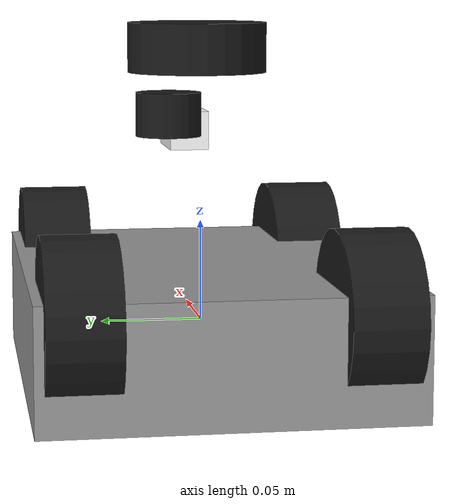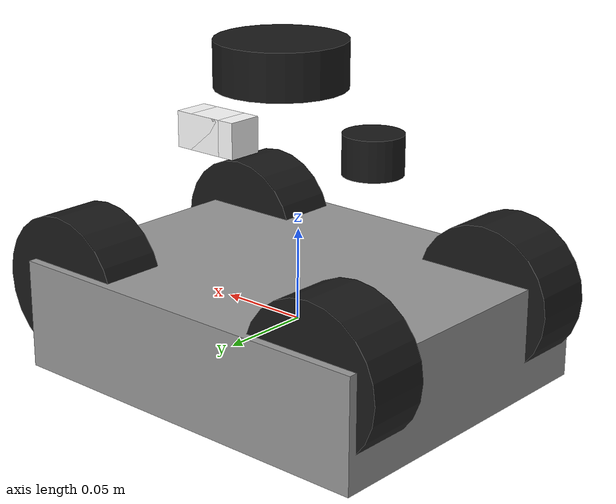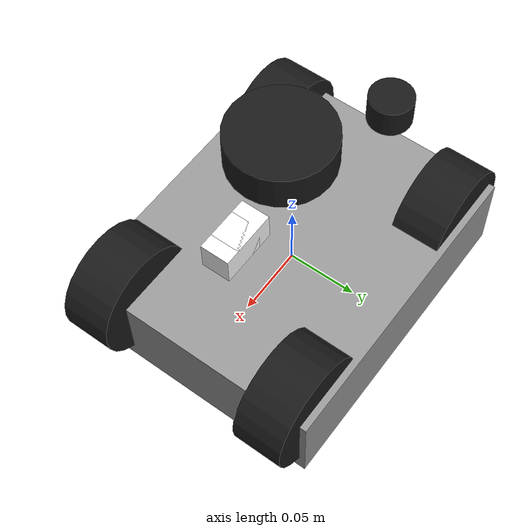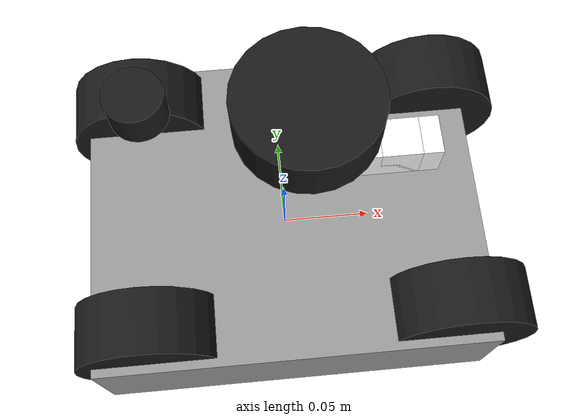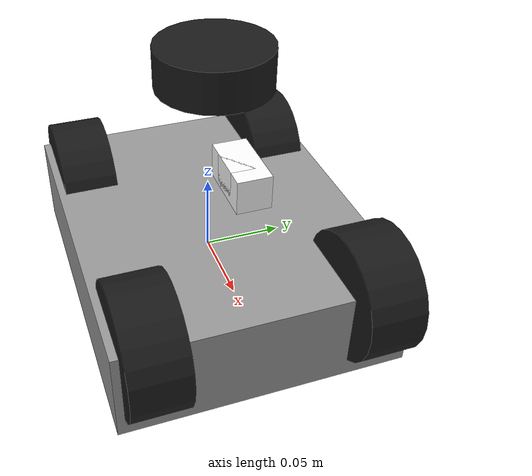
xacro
<?xml version="1.0" encoding="utf-8"?>
<robot name="brain_robot" xmlns:xacro="http://www.ros.org/wiki/xacro">
  <xacro:include filename="$(find description)/urdf/materials.xacro"/>

  <!-- ==================== base_footprint ==================== -->
  <link name="base_footprint"/>
  <joint name="base_joint" type="fixed">
  <parent link="base_link"/>          <!-- base_link 是父 -->
  <child link="base_footprint"/>      <!-- base_footprint 是子 -->
  <origin xyz="0.0 0.0 -0.028" rpy="0 0 0"/>  <!-- 注意：z 为负 -->
  </joint>

  <!-- ==================== IMU ==================== -->
  <link name="imu_link"/>
  <joint name="imu_joint" type="fixed">
    <parent link="base_link"/>
    <child link="imu_link"/>
    <origin xyz="0.04 -0.015 0.05" rpy="0 0 1.57"/>
  </joint>

  <!-- ==================== base_link ==================== -->
  <link name="base_link">
    <inertial>
      <origin xyz="-0.0073743 0.00027245 0.033869" rpy="0 0 0"/>
      <mass value="0.35536"/>
      <inertia ixx="0.00029526" ixy="-8.622E-07" ixz="3.753E-05"
               iyy="0.00065872" iyz="-4.6067E-09"
               izz="0.00086726"/>
    </inertial>
    <visual>
      <origin xyz="0 0 0" rpy="0 0 0"/>
      <geometry><box size="0.22 0.18 0.06"/></geometry>
      <material name="gray"/>
    </visual>
    <collision>
      <origin xyz="0 0 0" rpy="0 0 0"/>
      <geometry><box size="0.22 0.18 0.06"/></geometry>
    </collision>
  </link>

  <!-- ==================== 激光雷达 ==================== -->
  <link name="lidar_frame">
    <inertial>
      <mass value="0.03856"/>
      <inertia ixx="4.66e-6" ixy="0.0" ixz="0.0"
               iyy="4.72e-6" iyz="0.0"
               izz="7.61e-6"/>
    </inertial>
    <visual>
      <origin xyz="0 0 0" rpy="0 0 0"/>
      <geometry><cylinder radius="0.035" length="0.025"/></geometry>
      <material name="black"/>
    </visual>
    <collision>
      <origin xyz="0 0 0" rpy="0 0 0"/>
      <geometry><cylinder radius="0.035" length="0.025"/></geometry>
    </collision>
  </link>
  <joint name="lidar_joint" type="fixed">
    <origin xyz="0.011476 7.415E-05 0.13641" rpy="0 0 0"/>
    <parent link="base_link"/>
    <child link="lidar_frame"/>
  </joint>

  <!-- ==================== 麦克风 ==================== -->
  <link name="mic_link">
    <inertial>
      <mass value="0.02109"/>
      <inertia ixx="1.36e-5" ixy="0.0" ixz="0.0"
               iyy="3.02e-5" iyz="0.0"
               izz="4.19e-5"/>
    </inertial>
    <visual>
      <origin xyz="0 0 0" rpy="0 0 0"/>
      <geometry><cylinder radius="0.015" length="0.02"/></geometry>
      <material name="black"/>
    </visual>
    <collision>
      <origin xyz="0 0 0" rpy="0 0 0"/>
      <geometry><cylinder radius="0.015" length="0.02"/></geometry>
    </collision>
  </link>
  <joint name="mic_joint" type="fixed">
    <origin xyz="-0.068965 0.025075 0.10955" rpy="0 0 0"/>
    <parent link="base_link"/>
    <child link="mic_link"/>
  </joint>

  <!-- ==================== lidar_sim_frame ==================== -->
  <link name="lidar_sim_frame"/>
  <joint name="lidar_sim_frame_joint" type="fixed">
    <origin xyz="0 0 0" rpy="0 0 0"/>
    <parent link="lidar_frame"/>
    <child link="lidar_sim_frame"/>
  </joint>

  <!-- ==================== 麦轮宏 ==================== -->
  <xacro:macro name="mecanum_wheel" params="link_name joint_name x_offset y_offset z_offset">
    <link name="${link_name}">
      <inertial>
        <mass value="0.0705"/>
        <inertia ixx="1.05e-5" ixy="0.0" ixz="0.0"
                 iyy="1.66e-5" iyz="0.0"
                 izz="1.05e-5"/>
      </inertial>
      <visual>
        <origin xyz="0 0 0" rpy="1.5708 0 0"/>
        <geometry><cylinder radius="0.04" length="0.035"/></geometry>
        <material name="black"/>
      </visual>
      <visual>
        <origin xyz="0 0.012 0" rpy="1.5708 0 0.785"/>
        <geometry><cylinder radius="0.006" length="0.012"/></geometry>
        <material name="darkgray"/>
      </visual>
      <visual>
        <origin xyz="0 -0.012 0" rpy="1.5708 0 0.785"/>
        <geometry><cylinder radius="0.006" length="0.012"/></geometry>
        <material name="darkgray"/>
      </visual>
      <collision>
        <origin xyz="0 0 0" rpy="1.5708 0 0"/>
        <geometry><cylinder radius="0.04" length="0.035"/></geometry>
      </collision>
    </link>
    <joint name="${joint_name}" type="continuous">
      <parent link="base_link"/>
      <child link="${link_name}"/>
      <origin xyz="${x_offset} ${y_offset} ${z_offset}" rpy="0 0 0"/>
      <axis xyz="0 1 0"/>
      <limit effort="10" velocity="10"/>
    </joint>
  </xacro:macro>

  <!-- ==================== 4个轮子 ==================== -->
  <xacro:mecanum_wheel
    link_name="wheel_front_left_link"
    joint_name="wheel_front_left_joint"
    x_offset="0.09097"
    y_offset="0.067865"
    z_offset="0.017096"/>

  <xacro:mecanum_wheel
    link_name="wheel_front_right_link"
    joint_name="wheel_front_right_joint"
    x_offset="0.090972"
    y_offset="-0.067717"
    z_offset="0.017098"/>

  <xacro:mecanum_wheel
    link_name="wheel_back_left_link"
    joint_name="wheel_back_left_joint"
    x_offset="-0.080677"
    y_offset="0.067865"
    z_offset="0.016719"/>

  <xacro:mecanum_wheel
    link_name="wheel_back_right_link"
    joint_name="wheel_back_right_joint"
    x_offset="-0.080677"
    y_offset="-0.067717"
    z_offset="0.016719"/>

  <!-- ==================== 深度相机 ==================== -->
  <xacro:include filename="$(find description)/urdf/ascamera.xacro"/>

  <!-- ==================== ros2_control ==================== -->
  <ros2_control name="BrainSystem" type="system">
    <hardware>
      <plugin>brain_hardware/BrainSystemHardware</plugin>
    </hardware>
    <joint name="wheel_front_left_joint">
      <command_interface name="velocity"/>
      <state_interface name="position"/>
      <state_interface name="velocity"/>
    </joint>
    <joint name="wheel_front_right_joint">
      <command_interface name="velocity"/>
      <state_interface name="position"/>
      <state_interface name="velocity"/>
    </joint>
    <joint name="wheel_back_left_joint">
      <command_interface name="velocity"/>
      <state_interface name="position"/>
      <state_interface name="velocity"/>
    </joint>
    <joint name="wheel_back_right_joint">
      <command_interface name="velocity"/>
      <state_interface name="position"/>
      <state_interface name="velocity"/>
    </joint>
  </ros2_control>

</robot>

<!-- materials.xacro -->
<robot>
    <material name="black">
        <color rgba="0.1 0.1 0.1 1.0"/>
    </material>
    <material name="darkgray">
        <color rgba="0.3 0.3 0.3 1.0"/>
    </material>
    <material name="gray">
        <color rgba="0.6 0.6 0.6 1.0"/>
    </material>
    <material name="lightgray">
        <color rgba="0.8 0.8 0.8 1.0"/>
    </material>
    <material name="white">
        <color rgba="1.0 1.0 1.0 1.0"/>
    </material>
    <material name="blue">
        <color rgba="0.2 0.3 0.8 1.0"/>
    </material>
    <material name="red">
        <color rgba="0.8 0.1 0.1 1.0"/>
    </material>
    <material name="green">
        <color rgba="0.1 0.8 0.1 1.0"/>
    </material>
    <material name="yellow">
        <color rgba="0.9 0.9 0.1 1.0"/>
    </material>
    <material name="orange">
        <color rgba="0.9 0.5 0.1 1.0"/>
    </material>
</robot>

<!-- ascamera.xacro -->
<robot xmlns:xacro="http://ros.org/wiki/xacro">
  <!-- 深度相机主体 -->
  <link name="depth_camera_link_1">
    <visual>
      <origin xyz="0 0 0" rpy="0 0 0"/>
      <geometry><box size="0.04 0.02 0.02"/></geometry>
      <material name="white"/>
    </visual>
  </link>

  <!-- RGB 相机主体 -->
  <link name="rgb_camera_link_1">
    <visual>
      <origin xyz="0 0 0" rpy="0 0 0"/>
      <geometry><box size="0.02 0.02 0.02"/></geometry>
      <material name="white"/>
    </visual>
  </link>

  <!-- 深度相机 → base_link -->
  <joint name="depth_camera_joint_1" type="fixed">
    <parent link="base_link"/>
    <child link="depth_camera_link_1"/>
    <origin xyz="0.057373 7.9091E-05 0.091864" rpy="0 0 0"/>
  </joint>

  <!-- RGB 相机 → depth_camera_link_1 -->
  <joint name="rgb_camera_joint_1" type="fixed">
    <parent link="depth_camera_link_1"/>
    <child link="rgb_camera_link_1"/>
    <origin xyz="0 0 0" rpy="0 0 0"/>
  </joint>
</robot>
